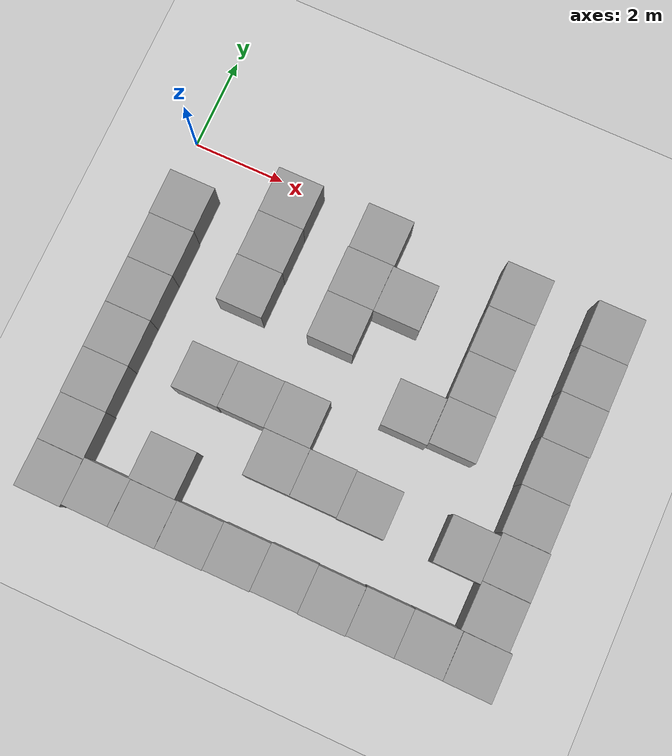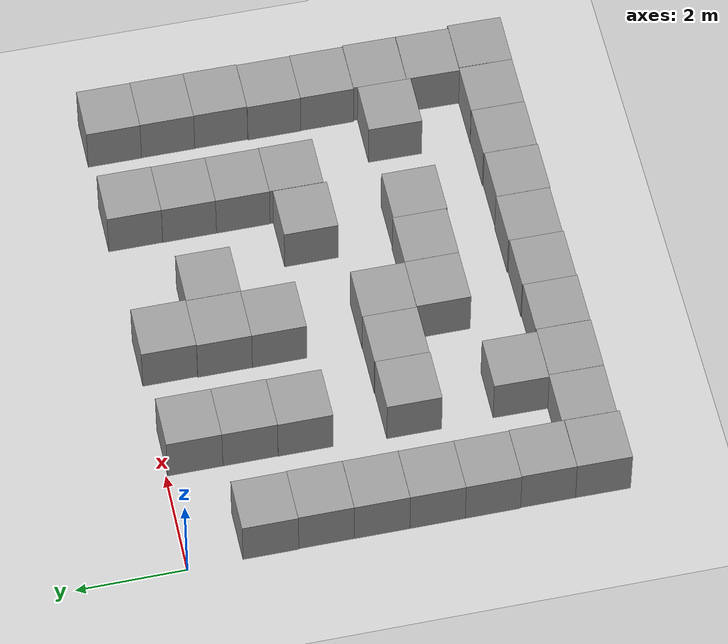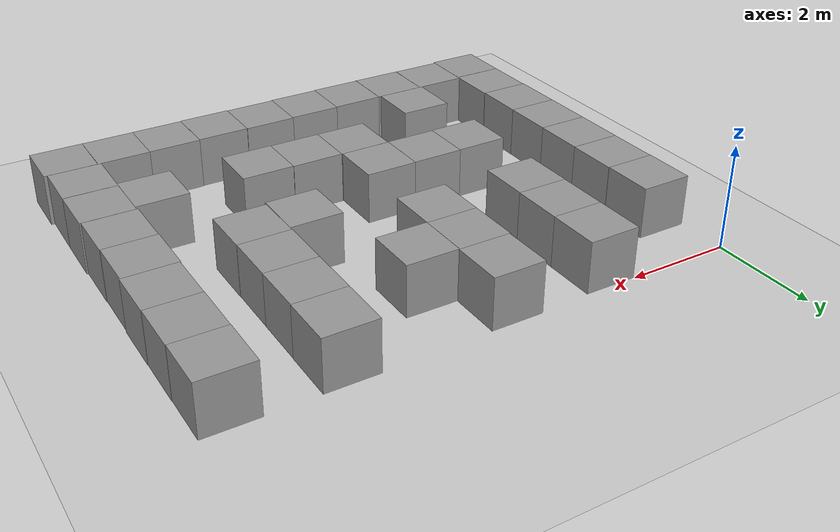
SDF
<sdf version="1.7">
 <world name="default">
  <model name="ground_plane">
   <static>1</static>
   <link name="link">
    <collision name="collision">
     <geometry><plane><normal>0 0 1</normal><size>100 100</size></plane></geometry>
     <surface>
      <contact><collide_bitmask>65535</collide_bitmask></contact>
      <friction><ode><mu>100</mu><mu2>50</mu2></ode></friction>
     </surface>
    </collision>
    <visual name="visual">
     <cast_shadows>0</cast_shadows>
     <geometry><plane><normal>0 0 1</normal><size>100 100</size></plane></geometry>
     <material>
      <script><uri>file://media/materials/scripts/gazebo.material</uri><name>Gazebo/Grey</name></script>
     </material>
    </visual>
   </link>
  </model>
  <model name="unit_box_1_clone_19">
   <pose>9.47926 -0.414712 0.499995 -1e-05 -0 -0.001441</pose>
   <link name="link">
    <inertial>
     <mass>1</mass>
     <inertia>
      <ixx>0.166667</ixx>
      <ixy>0</ixy>
      <ixz>0</ixz>
      <iyy>0.166667</iyy>
      <iyz>0</iyz>
      <izz>0.166667</izz>
     </inertia>
    </inertial>
    <collision name="collision"><geometry><box><size>1 1 1</size></box></geometry></collision>
    <visual name="visual">
     <geometry><box><size>1 1 1</size></box></geometry>
     <material>
      <script><name>Gazebo/Grey</name><uri>file://media/materials/scripts/gazebo.material</uri></script>
     </material>
    </visual>
   </link>
  </model>
  <model name="unit_box_1_clone_20">
   <pose>9.48358 -1.41474 0.5 0 -0 -0.001453</pose>
   <link name="link">
    <inertial>
     <mass>1</mass>
     <inertia>
      <ixx>0.166667</ixx>
      <ixy>0</ixy>
      <ixz>0</ixz>
      <iyy>0.166667</iyy>
      <iyz>0</iyz>
      <izz>0.166667</izz>
     </inertia>
    </inertial>
    <collision name="collision"><geometry><box><size>1 1 1</size></box></geometry></collision>
    <visual name="visual">
     <geometry><box><size>1 1 1</size></box></geometry>
     <material>
      <script><name>Gazebo/Grey</name><uri>file://media/materials/scripts/gazebo.material</uri></script>
     </material>
    </visual>
   </link>
  </model>
  <model name="unit_box_1_clone_21">
   <pose>9.48755 -2.41477 0.499995 1e-05 -0 -0.001494</pose>
   <link name="link">
    <inertial>
     <mass>1</mass>
     <inertia>
      <ixx>0.166667</ixx>
      <ixy>0</ixy>
      <ixz>0</ixz>
      <iyy>0.166667</iyy>
      <iyz>0</iyz>
      <izz>0.166667</izz>
     </inertia>
    </inertial>
    <collision name="collision"><geometry><box><size>1 1 1</size></box></geometry></collision>
    <visual name="visual">
     <geometry><box><size>1 1 1</size></box></geometry>
     <material>
      <script><name>Gazebo/Grey</name><uri>file://media/materials/scripts/gazebo.material</uri></script>
     </material>
    </visual>
   </link>
  </model>
  <model name="unit_box_1_clone_22">
   <pose>9.47022 -3.41497 0.499995 1e-05 -0 -0.001951</pose>
   <link name="link">
    <inertial>
     <mass>1</mass>
     <inertia>
      <ixx>0.166667</ixx>
      <ixy>0</ixy>
      <ixz>0</ixz>
      <iyy>0.166667</iyy>
      <iyz>0</iyz>
      <izz>0.166667</izz>
     </inertia>
    </inertial>
    <collision name="collision"><geometry><box><size>1 1 1</size></box></geometry></collision>
    <visual name="visual">
     <geometry><box><size>1 1 1</size></box></geometry>
     <material>
      <script><name>Gazebo/Grey</name><uri>file://media/materials/scripts/gazebo.material</uri></script>
     </material>
    </visual>
   </link>
  </model>
  <model name="unit_box_1_clone_23">
   <pose>9.47619 -4.41503 0.499995 1e-05 0 -0.002007</pose>
   <link name="link">
    <inertial>
     <mass>1</mass>
     <inertia>
      <ixx>0.166667</ixx>
      <ixy>0</ixy>
      <ixz>0</ixz>
      <iyy>0.166667</iyy>
      <iyz>0</iyz>
      <izz>0.166667</izz>
     </inertia>
    </inertial>
    <collision name="collision"><geometry><box><size>1 1 1</size></box></geometry></collision>
    <visual name="visual">
     <geometry><box><size>1 1 1</size></box></geometry>
     <material>
      <script><name>Gazebo/Grey</name><uri>file://media/materials/scripts/gazebo.material</uri></script>
     </material>
    </visual>
   </link>
  </model>
  <model name="unit_box_1_clone_24">
   <pose>9.4987 -5.41677 0.5 0 -0 -0.005404</pose>
   <link name="link">
    <inertial>
     <mass>1</mass>
     <inertia>
      <ixx>0.166667</ixx>
      <ixy>0</ixy>
      <ixz>0</ixz>
      <iyy>0.166667</iyy>
      <iyz>0</iyz>
      <izz>0.166667</izz>
     </inertia>
    </inertial>
    <collision name="collision"><geometry><box><size>1 1 1</size></box></geometry></collision>
    <visual name="visual">
     <geometry><box><size>1 1 1</size></box></geometry>
     <material>
      <script><name>Gazebo/Grey</name><uri>file://media/materials/scripts/gazebo.material</uri></script>
     </material>
    </visual>
   </link>
  </model>
  <model name="unit_box_1_clone_25">
   <pose>9.48918 -6.4199 0.5 0 0 -0.011755</pose>
   <link name="link">
    <inertial>
     <mass>1</mass>
     <inertia>
      <ixx>0.166667</ixx>
      <ixy>0</ixy>
      <ixz>0</ixz>
      <iyy>0.166667</iyy>
      <iyz>0</iyz>
      <izz>0.166667</izz>
     </inertia>
    </inertial>
    <collision name="collision"><geometry><box><size>1 1 1</size></box></geometry></collision>
    <visual name="visual">
     <geometry><box><size>1 1 1</size></box></geometry>
     <material>
      <script><name>Gazebo/Grey</name><uri>file://media/materials/scripts/gazebo.material</uri></script>
     </material>
    </visual>
   </link>
  </model>
  <model name="unit_box_2">
   <pose>9.54364 -7.42234 0.499995 -1e-05 -0 -0.007779</pose>
   <link name="link">
    <inertial>
     <mass>1</mass>
     <inertia>
      <ixx>0.166667</ixx>
      <ixy>0</ixy>
      <ixz>0</ixz>
      <iyy>0.166667</iyy>
      <iyz>0</iyz>
      <izz>0.166667</izz>
     </inertia>
    </inertial>
    <collision name="collision"><geometry><box><size>1 1 1</size></box></geometry></collision>
    <visual name="visual">
     <geometry><box><size>1 1 1</size></box></geometry>
     <material>
      <script><name>Gazebo/Grey</name><uri>file://media/materials/scripts/gazebo.material</uri></script>
     </material>
    </visual>
   </link>
  </model>
  <model name="unit_box_1_clone_26">
   <pose>8.54087 -7.41397 0.5 0 -0 -0.002181</pose>
   <link name="link">
    <inertial>
     <mass>1</mass>
     <inertia>
      <ixx>0.166667</ixx>
      <ixy>0</ixy>
      <ixz>0</ixz>
      <iyy>0.166667</iyy>
      <iyz>0</iyz>
      <izz>0.166667</izz>
     </inertia>
    </inertial>
    <collision name="collision"><geometry><box><size>1 1 1</size></box></geometry></collision>
    <visual name="visual">
     <geometry><box><size>1 1 1</size></box></geometry>
     <material>
      <script><name>Gazebo/Grey</name><uri>file://media/materials/scripts/gazebo.material</uri></script>
     </material>
    </visual>
   </link>
  </model>
  <model name="unit_box_1_clone_27">
   <pose>7.54069 -7.4162 0.499995 -0 -1e-05 -0.001962</pose>
   <link name="link">
    <inertial>
     <mass>1</mass>
     <inertia>
      <ixx>0.166667</ixx>
      <ixy>0</ixy>
      <ixz>0</ixz>
      <iyy>0.166667</iyy>
      <iyz>0</iyz>
      <izz>0.166667</izz>
     </inertia>
    </inertial>
    <collision name="collision"><geometry><box><size>1 1 1</size></box></geometry></collision>
    <visual name="visual">
     <geometry><box><size>1 1 1</size></box></geometry>
     <material>
      <script><name>Gazebo/Grey</name><uri>file://media/materials/scripts/gazebo.material</uri></script>
     </material>
    </visual>
   </link>
  </model>
  <model name="unit_box_1_clone_28">
   <pose>6.5403 -7.43104 0.499995 0 1e-05 -0.001255</pose>
   <link name="link">
    <inertial>
     <mass>1</mass>
     <inertia>
      <ixx>0.166667</ixx>
      <ixy>0</ixy>
      <ixz>0</ixz>
      <iyy>0.166667</iyy>
      <iyz>0</iyz>
      <izz>0.166667</izz>
     </inertia>
    </inertial>
    <collision name="collision"><geometry><box><size>1 1 1</size></box></geometry></collision>
    <visual name="visual">
     <geometry><box><size>1 1 1</size></box></geometry>
     <material>
      <script><name>Gazebo/Grey</name><uri>file://media/materials/scripts/gazebo.material</uri></script>
     </material>
    </visual>
   </link>
  </model>
  <model name="unit_box_1_clone_29">
   <pose>5.54025 -7.4173 0.499995 1e-05 0 -0.001135</pose>
   <link name="link">
    <inertial>
     <mass>1</mass>
     <inertia>
      <ixx>0.166667</ixx>
      <ixy>0</ixy>
      <ixz>0</ixz>
      <iyy>0.166667</iyy>
      <iyz>0</iyz>
      <izz>0.166667</izz>
     </inertia>
    </inertial>
    <collision name="collision"><geometry><box><size>1 1 1</size></box></geometry></collision>
    <visual name="visual">
     <geometry><box><size>1 1 1</size></box></geometry>
     <material>
      <script><name>Gazebo/Grey</name><uri>file://media/materials/scripts/gazebo.material</uri></script>
     </material>
    </visual>
   </link>
  </model>
  <model name="unit_box_1_clone_30">
   <pose>4.54021 -7.43576 0.5 -0 -0 -0.001109</pose>
   <link name="link">
    <inertial>
     <mass>1</mass>
     <inertia>
      <ixx>0.166667</ixx>
      <ixy>0</ixy>
      <ixz>0</ixz>
      <iyy>0.166667</iyy>
      <iyz>0</iyz>
      <izz>0.166667</izz>
     </inertia>
    </inertial>
    <collision name="collision"><geometry><box><size>1 1 1</size></box></geometry></collision>
    <visual name="visual">
     <geometry><box><size>1 1 1</size></box></geometry>
     <material>
      <script><name>Gazebo/Grey</name><uri>file://media/materials/scripts/gazebo.material</uri></script>
     </material>
    </visual>
   </link>
  </model>
  <model name="unit_box_1_clone_31">
   <pose>3.54018 -7.45003 0.5 0 0 -0.001125</pose>
   <link name="link">
    <inertial>
     <mass>1</mass>
     <inertia>
      <ixx>0.166667</ixx>
      <ixy>0</ixy>
      <ixz>0</ixz>
      <iyy>0.166667</iyy>
      <iyz>0</iyz>
      <izz>0.166667</izz>
     </inertia>
    </inertial>
    <collision name="collision"><geometry><box><size>1 1 1</size></box></geometry></collision>
    <visual name="visual">
     <geometry><box><size>1 1 1</size></box></geometry>
     <material>
      <script><name>Gazebo/Grey</name><uri>file://media/materials/scripts/gazebo.material</uri></script>
     </material>
    </visual>
   </link>
  </model>
  <model name="unit_box_1_clone_32">
   <pose>2.53878 -7.45545 0.499995 -1e-05 -0 -0.003907</pose>
   <link name="link">
    <inertial>
     <mass>1</mass>
     <inertia>
      <ixx>0.166667</ixx>
      <ixy>0</ixy>
      <ixz>0</ixz>
      <iyy>0.166667</iyy>
      <iyz>0</iyz>
      <izz>0.166667</izz>
     </inertia>
    </inertial>
    <collision name="collision"><geometry><box><size>1 1 1</size></box></geometry></collision>
    <visual name="visual">
     <geometry><box><size>1 1 1</size></box></geometry>
     <material>
      <script><name>Gazebo/Grey</name><uri>file://media/materials/scripts/gazebo.material</uri></script>
     </material>
    </visual>
   </link>
  </model>
  <model name="unit_box_1_clone_33">
   <pose>1.53739 -7.44742 0.499995 1e-05 -0 -0.006743</pose>
   <link name="link">
    <inertial>
     <mass>1</mass>
     <inertia>
      <ixx>0.166667</ixx>
      <ixy>0</ixy>
      <ixz>0</ixz>
      <iyy>0.166667</iyy>
      <iyz>0</iyz>
      <izz>0.166667</izz>
     </inertia>
    </inertial>
    <collision name="collision"><geometry><box><size>1 1 1</size></box></geometry></collision>
    <visual name="visual">
     <geometry><box><size>1 1 1</size></box></geometry>
     <material>
      <script><name>Gazebo/Grey</name><uri>file://media/materials/scripts/gazebo.material</uri></script>
     </material>
    </visual>
   </link>
  </model>
  <model name="unit_box_1_clone_34">
   <pose>0.536064 -7.49066 0.499995 0 1e-05 -0.004598</pose>
   <link name="link">
    <inertial>
     <mass>1</mass>
     <inertia>
      <ixx>0.166667</ixx>
      <ixy>0</ixy>
      <ixz>0</ixz>
      <iyy>0.166667</iyy>
      <iyz>0</iyz>
      <izz>0.166667</izz>
     </inertia>
    </inertial>
    <collision name="collision"><geometry><box><size>1 1 1</size></box></geometry></collision>
    <visual name="visual">
     <geometry><box><size>1 1 1</size></box></geometry>
     <material>
      <script><name>Gazebo/Grey</name><uri>file://media/materials/scripts/gazebo.material</uri></script>
     </material>
    </visual>
   </link>
  </model>
  <model name="unit_box_1_clone_35">
   <pose>0.538828 -6.48801 0.499995 0 1e-05 0.000402</pose>
   <link name="link">
    <inertial>
     <mass>1</mass>
     <inertia>
      <ixx>0.166667</ixx>
      <ixy>0</ixy>
      <ixz>0</ixz>
      <iyy>0.166667</iyy>
      <iyz>0</iyz>
      <izz>0.166667</izz>
     </inertia>
    </inertial>
    <collision name="collision"><geometry><box><size>1 1 1</size></box></geometry></collision>
    <visual name="visual">
     <geometry><box><size>1 1 1</size></box></geometry>
     <material>
      <script><name>Gazebo/Grey</name><uri>file://media/materials/scripts/gazebo.material</uri></script>
     </material>
    </visual>
   </link>
  </model>
  <model name="unit_box_1_clone_36">
   <pose>0.525788 -5.48781 0.499995 0 -1e-05 0.000697</pose>
   <link name="link">
    <inertial>
     <mass>1</mass>
     <inertia>
      <ixx>0.166667</ixx>
      <ixy>0</ixy>
      <ixz>0</ixz>
      <iyy>0.166667</iyy>
      <iyz>0</iyz>
      <izz>0.166667</izz>
     </inertia>
    </inertial>
    <collision name="collision"><geometry><box><size>1 1 1</size></box></geometry></collision>
    <visual name="visual">
     <geometry><box><size>1 1 1</size></box></geometry>
     <material>
      <script><name>Gazebo/Grey</name><uri>file://media/materials/scripts/gazebo.material</uri></script>
     </material>
    </visual>
   </link>
  </model>
  <model name="unit_box_1_clone_37">
   <pose>0.523446 -4.48781 0.499995 -0 -1e-05 0.000686</pose>
   <link name="link">
    <inertial>
     <mass>1</mass>
     <inertia>
      <ixx>0.166667</ixx>
      <ixy>0</ixy>
      <ixz>0</ixz>
      <iyy>0.166667</iyy>
      <iyz>0</iyz>
      <izz>0.166667</izz>
     </inertia>
    </inertial>
    <collision name="collision"><geometry><box><size>1 1 1</size></box></geometry></collision>
    <visual name="visual">
     <geometry><box><size>1 1 1</size></box></geometry>
     <material>
      <script><name>Gazebo/Grey</name><uri>file://media/materials/scripts/gazebo.material</uri></script>
     </material>
    </visual>
   </link>
  </model>
  <model name="unit_box_1_clone_38">
   <pose>0.522668 -3.48722 0.499995 0 -1e-05 0.000496</pose>
   <link name="link">
    <inertial>
     <mass>1</mass>
     <inertia>
      <ixx>0.166667</ixx>
      <ixy>0</ixy>
      <ixz>0</ixz>
      <iyy>0.166667</iyy>
      <iyz>0</iyz>
      <izz>0.166667</izz>
     </inertia>
    </inertial>
    <collision name="collision"><geometry><box><size>1 1 1</size></box></geometry></collision>
    <visual name="visual">
     <geometry><box><size>1 1 1</size></box></geometry>
     <material>
      <script><name>Gazebo/Grey</name><uri>file://media/materials/scripts/gazebo.material</uri></script>
     </material>
    </visual>
   </link>
  </model>
  <model name="unit_box_1_clone_39">
   <pose>0.524559 -2.48689 0.499995 0 1e-05 0.000702</pose>
   <link name="link">
    <inertial>
     <mass>1</mass>
     <inertia>
      <ixx>0.166667</ixx>
      <ixy>0</ixy>
      <ixz>0</ixz>
      <iyy>0.166667</iyy>
      <iyz>0</iyz>
      <izz>0.166667</izz>
     </inertia>
    </inertial>
    <collision name="collision"><geometry><box><size>1 1 1</size></box></geometry></collision>
    <visual name="visual">
     <geometry><box><size>1 1 1</size></box></geometry>
     <material>
      <script><name>Gazebo/Grey</name><uri>file://media/materials/scripts/gazebo.material</uri></script>
     </material>
    </visual>
   </link>
  </model>
  <model name="unit_box_1_clone_40">
   <pose>0.512654 -1.48682 0.499995 0 1e-05 0.000847</pose>
   <link name="link">
    <inertial>
     <mass>1</mass>
     <inertia>
      <ixx>0.166667</ixx>
      <ixy>0</ixy>
      <ixz>0</ixz>
      <iyy>0.166667</iyy>
      <iyz>0</iyz>
      <izz>0.166667</izz>
     </inertia>
    </inertial>
    <collision name="collision"><geometry><box><size>1 1 1</size></box></geometry></collision>
    <visual name="visual">
     <geometry><box><size>1 1 1</size></box></geometry>
     <material>
      <script><name>Gazebo/Grey</name><uri>file://media/materials/scripts/gazebo.material</uri></script>
     </material>
    </visual>
   </link>
  </model>
  <model name="unit_box_1_clone_53">
   <pose>2.50634 -0.531994 0.499995 1e-05 0 0.000821</pose>
   <link name="link">
    <inertial>
     <mass>1</mass>
     <inertia>
      <ixx>0.166667</ixx>
      <ixy>0</ixy>
      <ixz>0</ixz>
      <iyy>0.166667</iyy>
      <iyz>0</iyz>
      <izz>0.166667</izz>
     </inertia>
    </inertial>
    <collision name="collision"><geometry><box><size>1 1 1</size></box></geometry></collision>
    <visual name="visual">
     <geometry><box><size>1 1 1</size></box></geometry>
     <material>
      <script><name>Gazebo/Grey</name><uri>file://media/materials/scripts/gazebo.material</uri></script>
     </material>
    </visual>
   </link>
  </model>
  <model name="unit_box_1_clone_54">
   <pose>2.5065 -1.532 0.499995 1e-05 -0 0.000825</pose>
   <link name="link">
    <inertial>
     <mass>1</mass>
     <inertia>
      <ixx>0.166667</ixx>
      <ixy>0</ixy>
      <ixz>0</ixz>
      <iyy>0.166667</iyy>
      <iyz>0</iyz>
      <izz>0.166667</izz>
     </inertia>
    </inertial>
    <collision name="collision"><geometry><box><size>1 1 1</size></box></geometry></collision>
    <visual name="visual">
     <geometry><box><size>1 1 1</size></box></geometry>
     <material>
      <script><name>Gazebo/Grey</name><uri>file://media/materials/scripts/gazebo.material</uri></script>
     </material>
    </visual>
   </link>
  </model>
  <model name="unit_box_1_clone_59">
   <pose>7.51919 -0.427141 0.499995 -1e-05 0 -0.000188</pose>
   <link name="link">
    <inertial>
     <mass>1</mass>
     <inertia>
      <ixx>0.166667</ixx>
      <ixy>0</ixy>
      <ixz>0</ixz>
      <iyy>0.166667</iyy>
      <iyz>0</iyz>
      <izz>0.166667</izz>
     </inertia>
    </inertial>
    <collision name="collision"><geometry><box><size>1 1 1</size></box></geometry></collision>
    <visual name="visual">
     <geometry><box><size>1 1 1</size></box></geometry>
     <material>
      <script><name>Gazebo/Grey</name><uri>file://media/materials/scripts/gazebo.material</uri></script>
     </material>
    </visual>
   </link>
  </model>
  <model name="unit_box_1_clone_60">
   <pose>7.51475 -1.42727 0.499995 1e-05 -0 -0.000221</pose>
   <link name="link">
    <inertial>
     <mass>1</mass>
     <inertia>
      <ixx>0.166667</ixx>
      <ixy>0</ixy>
      <ixz>0</ixz>
      <iyy>0.166667</iyy>
      <iyz>0</iyz>
      <izz>0.166667</izz>
     </inertia>
    </inertial>
    <collision name="collision"><geometry><box><size>1 1 1</size></box></geometry></collision>
    <visual name="visual">
     <geometry><box><size>1 1 1</size></box></geometry>
     <material>
      <script><name>Gazebo/Grey</name><uri>file://media/materials/scripts/gazebo.material</uri></script>
     </material>
    </visual>
   </link>
  </model>
  <model name="unit_box_1_clone_61">
   <pose>7.513 -2.42728 0.499995 1e-05 -0 -0.000221</pose>
   <link name="link">
    <inertial>
     <mass>1</mass>
     <inertia>
      <ixx>0.166667</ixx>
      <ixy>0</ixy>
      <ixz>0</ixz>
      <iyy>0.166667</iyy>
      <iyz>0</iyz>
      <izz>0.166667</izz>
     </inertia>
    </inertial>
    <collision name="collision"><geometry><box><size>1 1 1</size></box></geometry></collision>
    <visual name="visual">
     <geometry><box><size>1 1 1</size></box></geometry>
     <material>
      <script><name>Gazebo/Grey</name><uri>file://media/materials/scripts/gazebo.material</uri></script>
     </material>
    </visual>
   </link>
  </model>
  <model name="unit_box_1_clone_66">
   <pose>4.48293 -0.468998 0.5 0 -0 0.001244</pose>
   <link name="link">
    <inertial>
     <mass>1</mass>
     <inertia>
      <ixx>0.166667</ixx>
      <ixy>0</ixy>
      <ixz>0</ixz>
      <iyy>0.166667</iyy>
      <iyz>0</iyz>
      <izz>0.166667</izz>
     </inertia>
    </inertial>
    <collision name="collision"><geometry><box><size>1 1 1</size></box></geometry></collision>
    <visual name="visual">
     <geometry><box><size>1 1 1</size></box></geometry>
     <material>
      <script><name>Gazebo/Grey</name><uri>file://media/materials/scripts/gazebo.material</uri></script>
     </material>
    </visual>
   </link>
  </model>
  <model name="unit_box_1_clone_67">
   <pose>4.46522 -1.46911 0.499995 -0 -1e-05 0.001404</pose>
   <link name="link">
    <inertial>
     <mass>1</mass>
     <inertia>
      <ixx>0.166667</ixx>
      <ixy>0</ixy>
      <ixz>0</ixz>
      <iyy>0.166667</iyy>
      <iyz>0</iyz>
      <izz>0.166667</izz>
     </inertia>
    </inertial>
    <collision name="collision"><geometry><box><size>1 1 1</size></box></geometry></collision>
    <visual name="visual">
     <geometry><box><size>1 1 1</size></box></geometry>
     <material>
      <script><name>Gazebo/Grey</name><uri>file://media/materials/scripts/gazebo.material</uri></script>
     </material>
    </visual>
   </link>
  </model>
  <model name="unit_box_1_clone_68">
   <pose>2.49429 -6.45382 0.499995 1e-05 -0 -0.0068</pose>
   <link name="link">
    <inertial>
     <mass>1</mass>
     <inertia>
      <ixx>0.166667</ixx>
      <ixy>0</ixy>
      <ixz>0</ixz>
      <iyy>0.166667</iyy>
      <iyz>0</iyz>
      <izz>0.166667</izz>
     </inertia>
    </inertial>
    <collision name="collision"><geometry><box><size>1 1 1</size></box></geometry></collision>
    <visual name="visual">
     <geometry><box><size>1 1 1</size></box></geometry>
     <material>
      <script><name>Gazebo/Grey</name><uri>file://media/materials/scripts/gazebo.material</uri></script>
     </material>
    </visual>
   </link>
  </model>
  <model name="unit_box_1_clone_69">
   <pose>2.46196 -4.49993 0.499995 0 -1e-05 -0.000592</pose>
   <link name="link">
    <inertial>
     <mass>1</mass>
     <inertia>
      <ixx>0.166667</ixx>
      <ixy>0</ixy>
      <ixz>0</ixz>
      <iyy>0.166667</iyy>
      <iyz>0</iyz>
      <izz>0.166667</izz>
     </inertia>
    </inertial>
    <collision name="collision"><geometry><box><size>1 1 1</size></box></geometry></collision>
    <visual name="visual">
     <geometry><box><size>1 1 1</size></box></geometry>
     <material>
      <script><name>Gazebo/Grey</name><uri>file://media/materials/scripts/gazebo.material</uri></script>
     </material>
    </visual>
   </link>
  </model>
  <model name="unit_box_1_clone_70">
   <pose>2.5006 -2.532 0.499995 1e-05 0 0.000824</pose>
   <link name="link">
    <inertial>
     <mass>1</mass>
     <inertia>
      <ixx>0.166667</ixx>
      <ixy>0</ixy>
      <ixz>0</ixz>
      <iyy>0.166667</iyy>
      <iyz>0</iyz>
      <izz>0.166667</izz>
     </inertia>
    </inertial>
    <collision name="collision"><geometry><box><size>1 1 1</size></box></geometry></collision>
    <visual name="visual">
     <geometry><box><size>1 1 1</size></box></geometry>
     <material>
      <script><name>Gazebo/Grey</name><uri>file://media/materials/scripts/gazebo.material</uri></script>
     </material>
    </visual>
   </link>
  </model>
  <model name="unit_box_1_clone_71">
   <pose>3.46204 -4.48934 0.499995 -0 1e-05 -0.000473</pose>
   <link name="link">
    <inertial>
     <mass>1</mass>
     <inertia>
      <ixx>0.166667</ixx>
      <ixy>0</ixy>
      <ixz>0</ixz>
      <iyy>0.166667</iyy>
      <iyz>0</iyz>
      <izz>0.166667</izz>
     </inertia>
    </inertial>
    <collision name="collision"><geometry><box><size>1 1 1</size></box></geometry></collision>
    <visual name="visual">
     <geometry><box><size>1 1 1</size></box></geometry>
     <material>
      <script><name>Gazebo/Grey</name><uri>file://media/materials/scripts/gazebo.material</uri></script>
     </material>
    </visual>
   </link>
  </model>
  <model name="unit_box_1_clone_72">
   <pose>4.46213 -4.48162 0.499995 -1e-05 0 -0.000306</pose>
   <link name="link">
    <inertial>
     <mass>1</mass>
     <inertia>
      <ixx>0.166667</ixx>
      <ixy>0</ixy>
      <ixz>0</ixz>
      <iyy>0.166667</iyy>
      <iyz>0</iyz>
      <izz>0.166667</izz>
     </inertia>
    </inertial>
    <collision name="collision"><geometry><box><size>1 1 1</size></box></geometry></collision>
    <visual name="visual">
     <geometry><box><size>1 1 1</size></box></geometry>
     <material>
      <script><name>Gazebo/Grey</name><uri>file://media/materials/scripts/gazebo.material</uri></script>
     </material>
    </visual>
   </link>
  </model>
  <model name="unit_box_1_clone_73">
   <pose>4.47399 -5.48234 0.499995 -0 -1e-05 0.00085</pose>
   <link name="link">
    <inertial>
     <mass>1</mass>
     <inertia>
      <ixx>0.166667</ixx>
      <ixy>0</ixy>
      <ixz>0</ixz>
      <iyy>0.166667</iyy>
      <iyz>0</iyz>
      <izz>0.166667</izz>
     </inertia>
    </inertial>
    <collision name="collision"><geometry><box><size>1 1 1</size></box></geometry></collision>
    <visual name="visual">
     <geometry><box><size>1 1 1</size></box></geometry>
     <material>
      <script><name>Gazebo/Grey</name><uri>file://media/materials/scripts/gazebo.material</uri></script>
     </material>
    </visual>
   </link>
  </model>
  <model name="unit_box_1_clone_74">
   <pose>5.47412 -5.48382 0.499995 0 1e-05 0.000812</pose>
   <link name="link">
    <inertial>
     <mass>1</mass>
     <inertia>
      <ixx>0.166667</ixx>
      <ixy>0</ixy>
      <ixz>0</ixz>
      <iyy>0.166667</iyy>
      <iyz>0</iyz>
      <izz>0.166667</izz>
     </inertia>
    </inertial>
    <collision name="collision"><geometry><box><size>1 1 1</size></box></geometry></collision>
    <visual name="visual">
     <geometry><box><size>1 1 1</size></box></geometry>
     <material>
      <script><name>Gazebo/Grey</name><uri>file://media/materials/scripts/gazebo.material</uri></script>
     </material>
    </visual>
   </link>
  </model>
  <model name="unit_box_1_clone_75">
   <pose>6.47414 -5.49679 0.499995 -0 -1e-05 0.000806</pose>
   <link name="link">
    <inertial>
     <mass>1</mass>
     <inertia>
      <ixx>0.166667</ixx>
      <ixy>0</ixy>
      <ixz>0</ixz>
      <iyy>0.166667</iyy>
      <iyz>0</iyz>
      <izz>0.166667</izz>
     </inertia>
    </inertial>
    <collision name="collision"><geometry><box><size>1 1 1</size></box></geometry></collision>
    <visual name="visual">
     <geometry><box><size>1 1 1</size></box></geometry>
     <material>
      <script><name>Gazebo/Grey</name><uri>file://media/materials/scripts/gazebo.material</uri></script>
     </material>
    </visual>
   </link>
  </model>
  <model name="unit_box_1_clone_76">
   <pose>8.49758 -5.4881 0.499995 1e-05 -0 -0.00679</pose>
   <link name="link">
    <inertial>
     <mass>1</mass>
     <inertia>
      <ixx>0.166667</ixx>
      <ixy>0</ixy>
      <ixz>0</ixz>
      <iyy>0.166667</iyy>
      <iyz>0</iyz>
      <izz>0.166667</izz>
     </inertia>
    </inertial>
    <collision name="collision"><geometry><box><size>1 1 1</size></box></geometry></collision>
    <visual name="visual">
     <geometry><box><size>1 1 1</size></box></geometry>
     <material>
      <script><name>Gazebo/Grey</name><uri>file://media/materials/scripts/gazebo.material</uri></script>
     </material>
    </visual>
   </link>
  </model>
  <model name="unit_box_1_clone_77">
   <pose>7.51833 -3.42728 0.499995 -1e-05 0 -0.000238</pose>
   <link name="link">
    <inertial>
     <mass>1</mass>
     <inertia>
      <ixx>0.166667</ixx>
      <ixy>0</ixy>
      <ixz>0</ixz>
      <iyy>0.166667</iyy>
      <iyz>0</iyz>
      <izz>0.166667</izz>
     </inertia>
    </inertial>
    <collision name="collision"><geometry><box><size>1 1 1</size></box></geometry></collision>
    <visual name="visual">
     <geometry><box><size>1 1 1</size></box></geometry>
     <material>
      <script><name>Gazebo/Grey</name><uri>file://media/materials/scripts/gazebo.material</uri></script>
     </material>
    </visual>
   </link>
  </model>
  <model name="unit_box_1_clone_78">
   <pose>6.5145 -3.48874 0.499995 1e-05 -0 0.000101</pose>
   <link name="link">
    <inertial>
     <mass>1</mass>
     <inertia>
      <ixx>0.166667</ixx>
      <ixy>0</ixy>
      <ixz>0</ixz>
      <iyy>0.166667</iyy>
      <iyz>0</iyz>
      <izz>0.166667</izz>
     </inertia>
    </inertial>
    <collision name="collision"><geometry><box><size>1 1 1</size></box></geometry></collision>
    <visual name="visual">
     <geometry><box><size>1 1 1</size></box></geometry>
     <material>
      <script><name>Gazebo/Grey</name><uri>file://media/materials/scripts/gazebo.material</uri></script>
     </material>
    </visual>
   </link>
  </model>
  <model name="unit_box_1_clone_79">
   <pose>5.46639 -1.47639 0.499995 0 1e-05 0.000108</pose>
   <link name="link">
    <inertial>
     <mass>1</mass>
     <inertia>
      <ixx>0.166667</ixx>
      <ixy>0</ixy>
      <ixz>0</ixz>
      <iyy>0.166667</iyy>
      <iyz>0</iyz>
      <izz>0.166667</izz>
     </inertia>
    </inertial>
    <collision name="collision"><geometry><box><size>1 1 1</size></box></geometry></collision>
    <visual name="visual">
     <geometry><box><size>1 1 1</size></box></geometry>
     <material>
      <script><name>Gazebo/Grey</name><uri>file://media/materials/scripts/gazebo.material</uri></script>
     </material>
    </visual>
   </link>
  </model>
  <model name="unit_box_1_clone_80">
   <pose>4.46491 -2.46914 0.5 0 -0 0.001427</pose>
   <link name="link">
    <inertial>
     <mass>1</mass>
     <inertia>
      <ixx>0.166667</ixx>
      <ixy>0</ixy>
      <ixz>0</ixz>
      <iyy>0.166667</iyy>
      <iyz>0</iyz>
      <izz>0.166667</izz>
     </inertia>
    </inertial>
    <collision name="collision"><geometry><box><size>1 1 1</size></box></geometry></collision>
    <visual name="visual">
     <geometry><box><size>1 1 1</size></box></geometry>
     <material>
      <script><name>Gazebo/Grey</name><uri>file://media/materials/scripts/gazebo.material</uri></script>
     </material>
    </visual>
   </link>
  </model>
 </world>
</sdf>
